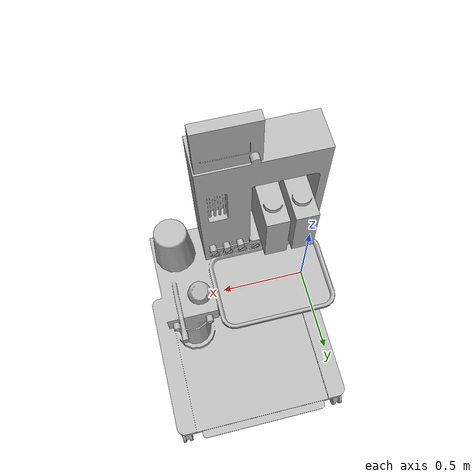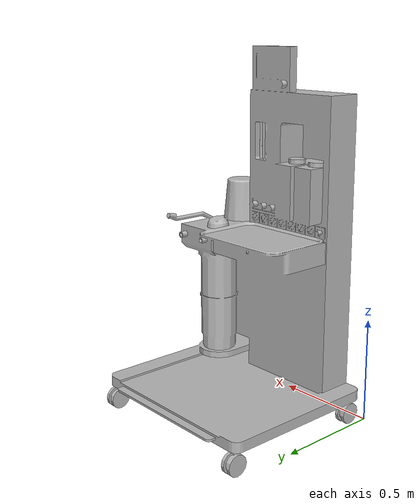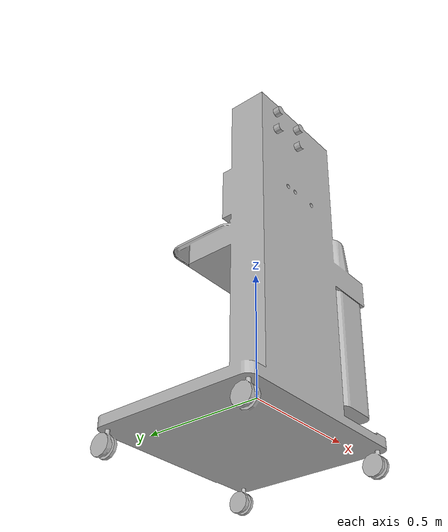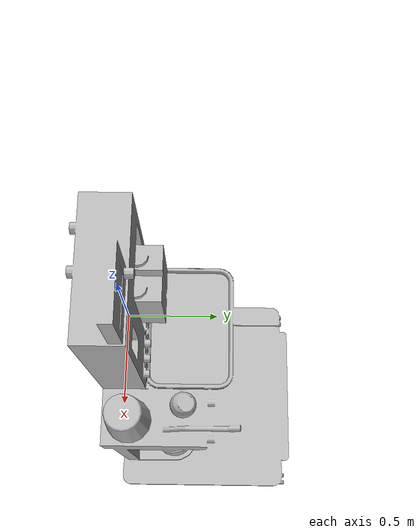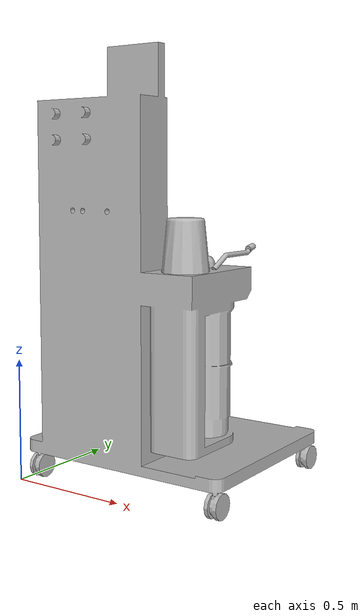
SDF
<?xml version="1.0" ?>
<sdf version="1.5">
  <model name="anestesia_table">
    <static>true</static>
    <link name="table">
      <inertial>
        <mass>20</mass>
      </inertial>
      <collision name="collision_table">
        <geometry>
          <mesh>
            <uri>model://maq_anestesia/meshes/maq_anestesia.stl</uri>
            <scale>0.001 0.001 0.001</scale>
          </mesh>
        </geometry>
        <surface>
        </surface>
      </collision>
      <visual name="visual_table">
        <geometry>
          <mesh>
            <uri>model://maq_anestesia/meshes/maq_anestesia.stl</uri>
            <scale>0.001 0.001 0.001</scale>
          </mesh>
        </geometry>
        <material>
          <script>
          </script>
        </material>
      </visual>
    </link>

  </model>
</sdf>
